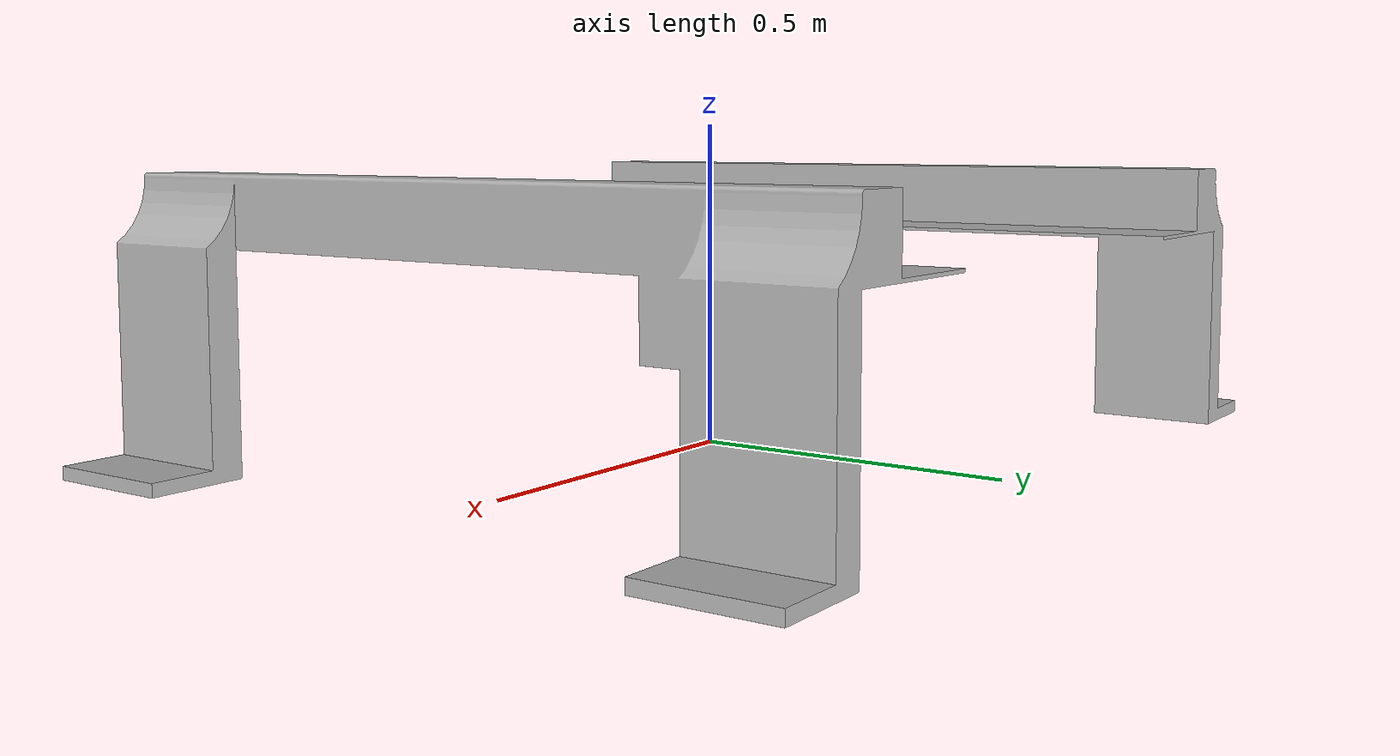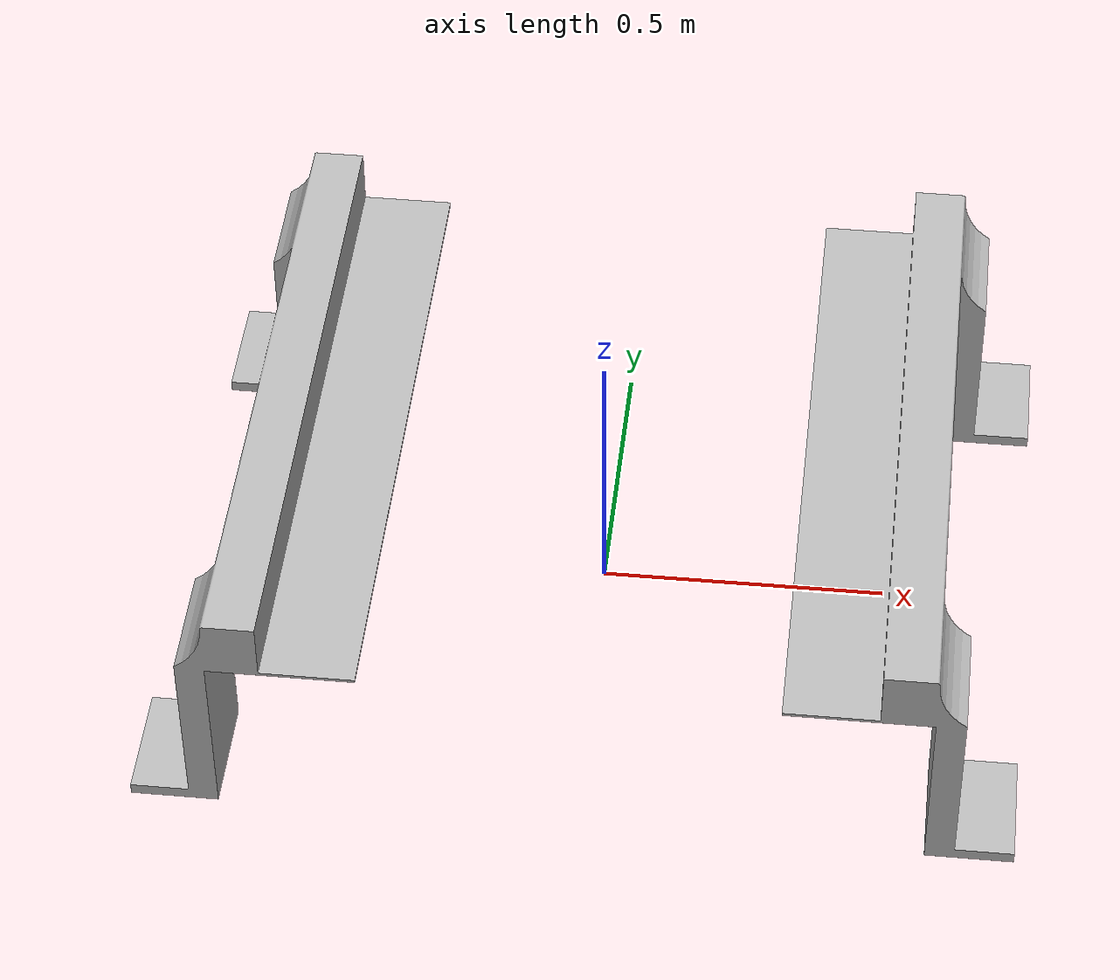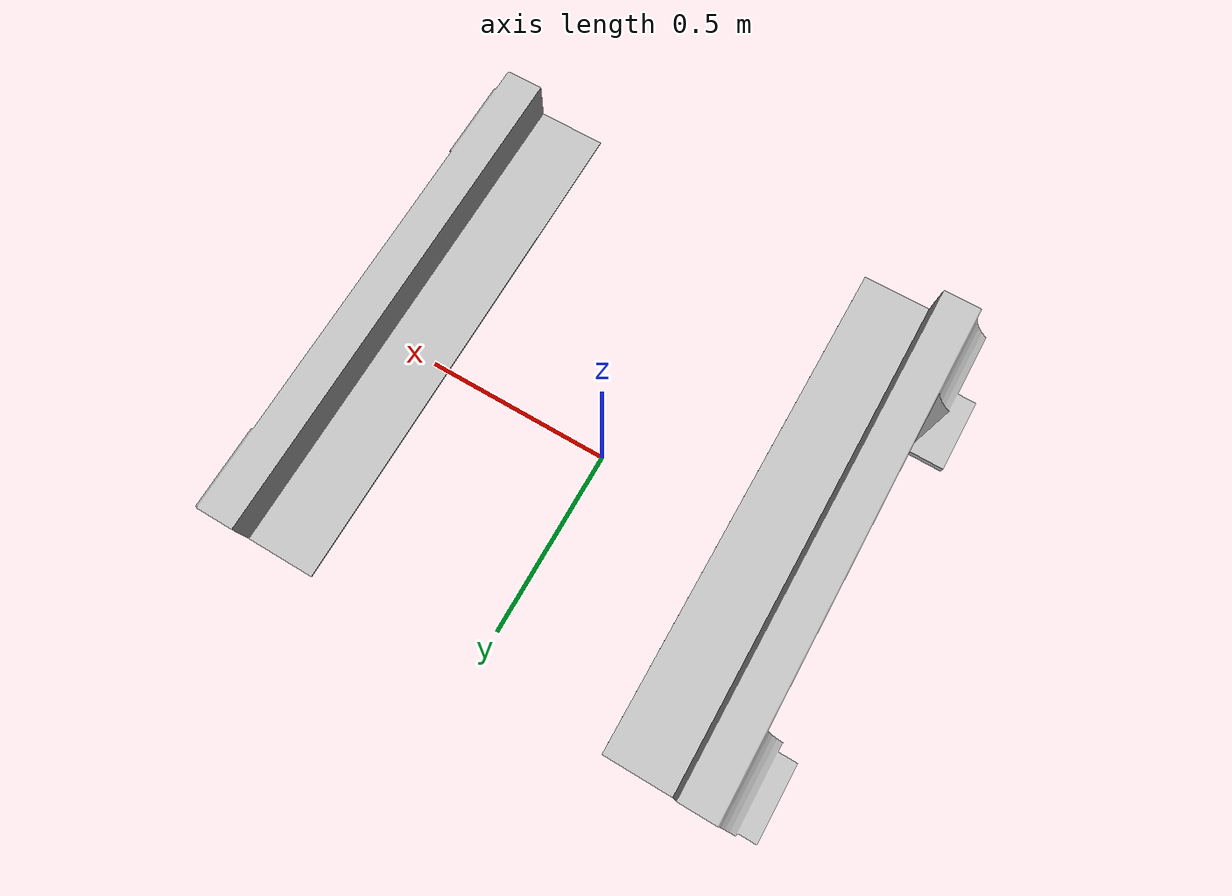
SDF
<?xml version="1.0" ?>
<sdf version="1.6">
  <model name="support">
    <static>1</static>
    <link name="link">
    <inertial>
          <pose>0 0 0.55 0 0 0</pose>
          <mass>0.5</mass>
          <inertia>
            <ixx>0.122</ixx>
            <ixy>0</ixy>
            <ixz>0</ixz>
            <iyy>0.082</iyy>
            <iyz>0</iyz>
            <izz>0.346</izz>
          </inertia>
       </inertial>
      <collision name="collision">
        <pose>0 0 0 0 0 0</pose>
        <geometry>
          <mesh>
            <uri>model://support/meshes/support.STL</uri>
          </mesh>
        </geometry>
      </collision>
      <visual name="visual">
        <geometry>
          <mesh>
            <uri>model://support/meshes/support.STL</uri>
          </mesh>
        </geometry>
      </visual>
    </link>
  </model>
</sdf>
